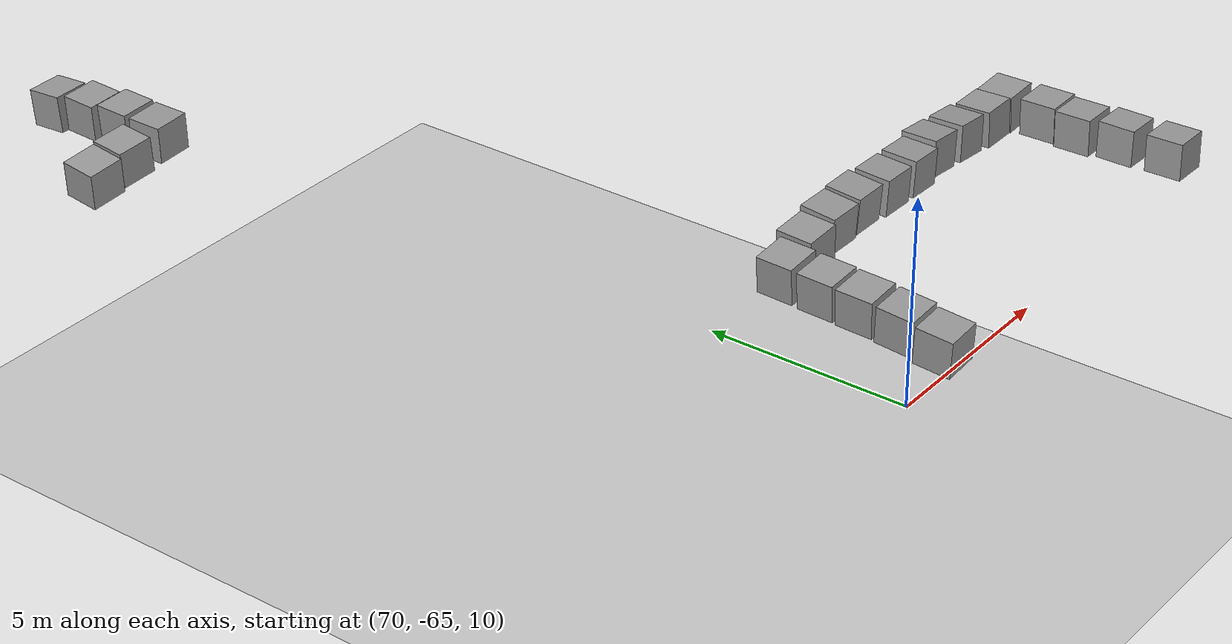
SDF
<sdf version="1.6">
 <world name="default">
  <model name="ground_plane">
   <static>1</static>
   <link name="link">
    <collision name="collision">
     <geometry><plane><normal>0 0 1</normal><size>100 100</size></plane></geometry>
     <surface>
      <contact><collide_bitmask>65535</collide_bitmask></contact>
      <friction><ode><mu>100</mu><mu2>50</mu2></ode></friction>
     </surface>
    </collision>
    <visual name="visual">
     <cast_shadows>0</cast_shadows>
     <geometry><plane><normal>0 0 1</normal><size>100 100</size></plane></geometry>
     <material>
      <script><uri>model://media/materials/scripts/gazebo.material</uri><name>Gazebo/Grey</name></script>
     </material>
    </visual>
   </link>
  </model>
  <model name="unit_box_0_clone_clone_5_clone_2_clone_8">
   <pose>71.1512 -38.5954 8.43974 -0.079454 -0.026746 -0.011143</pose>
   <link name="link">
    <inertial>
     <mass>1</mass>
     <inertia>
      <ixx>0.166667</ixx>
      <ixy>0</ixy>
      <ixz>0</ixz>
      <iyy>0.166667</iyy>
      <iyz>0</iyz>
      <izz>0.166667</izz>
     </inertia>
    </inertial>
    <collision name="collision"><geometry><box><size>1 1 1</size></box></geometry></collision>
    <visual name="visual">
     <geometry><box><size>1 1 1</size></box></geometry>
     <material>
      <script><name>Gazebo/Grey</name><uri>model://media/materials/scripts/gazebo.material</uri></script>
     </material>
    </visual>
   </link>
  </model>
  <model name="unit_box_0_clone_clone_5_clone_2_clone_9">
   <pose>71.3168 -39.6518 8.4976 0.012194 -0.06355 -0.033442</pose>
   <link name="link">
    <inertial>
     <mass>1</mass>
     <inertia>
      <ixx>0.166667</ixx>
      <ixy>0</ixy>
      <ixz>0</ixz>
      <iyy>0.166667</iyy>
      <iyz>0</iyz>
      <izz>0.166667</izz>
     </inertia>
    </inertial>
    <collision name="collision"><geometry><box><size>1 1 1</size></box></geometry></collision>
    <visual name="visual">
     <geometry><box><size>1 1 1</size></box></geometry>
     <material>
      <script><name>Gazebo/Grey</name><uri>model://media/materials/scripts/gazebo.material</uri></script>
     </material>
    </visual>
   </link>
  </model>
  <model name="unit_box_0_clone_clone_5_clone_2_clone_10">
   <pose>71.4637 -40.6971 8.51288 -0.008278 -0.070346 -0.039338</pose>
   <link name="link">
    <inertial>
     <mass>1</mass>
     <inertia>
      <ixx>0.166667</ixx>
      <ixy>0</ixy>
      <ixz>0</ixz>
      <iyy>0.166667</iyy>
      <iyz>0</iyz>
      <izz>0.166667</izz>
     </inertia>
    </inertial>
    <collision name="collision"><geometry><box><size>1 1 1</size></box></geometry></collision>
    <visual name="visual">
     <geometry><box><size>1 1 1</size></box></geometry>
     <material>
      <script><name>Gazebo/Grey</name><uri>model://media/materials/scripts/gazebo.material</uri></script>
     </material>
    </visual>
   </link>
  </model>
  <model name="unit_box_0_clone_clone_5_clone_2_clone_11">
   <pose>71.4317 -41.8346 8.50306 0.005621 -0.045023 0.012802</pose>
   <link name="link">
    <inertial>
     <mass>1</mass>
     <inertia>
      <ixx>0.166667</ixx>
      <ixy>0</ixy>
      <ixz>0</ixz>
      <iyy>0.166667</iyy>
      <iyz>0</iyz>
      <izz>0.166667</izz>
     </inertia>
    </inertial>
    <collision name="collision"><geometry><box><size>1 1 1</size></box></geometry></collision>
    <visual name="visual">
     <geometry><box><size>1 1 1</size></box></geometry>
     <material>
      <script><name>Gazebo/Grey</name><uri>model://media/materials/scripts/gazebo.material</uri></script>
     </material>
    </visual>
   </link>
  </model>
  <model name="unit_box_0_clone_clone_5_clone_2_clone_12">
   <pose>70.1063 -41.907 8.42726 0.030607 -0.097137 -0.077572</pose>
   <link name="link">
    <inertial>
     <mass>1</mass>
     <inertia>
      <ixx>0.166667</ixx>
      <ixy>0</ixy>
      <ixz>0</ixz>
      <iyy>0.166667</iyy>
      <iyz>0</iyz>
      <izz>0.166667</izz>
     </inertia>
    </inertial>
    <collision name="collision"><geometry><box><size>1 1 1</size></box></geometry></collision>
    <visual name="visual">
     <geometry><box><size>1 1 1</size></box></geometry>
     <material>
      <script><name>Gazebo/Grey</name><uri>model://media/materials/scripts/gazebo.material</uri></script>
     </material>
    </visual>
   </link>
  </model>
  <model name="unit_box_0_clone_clone_5_clone_2_clone_13">
   <pose>69.0108 -41.9505 8.32343 0.075912 -0.107909 -0.064497</pose>
   <link name="link">
    <inertial>
     <mass>1</mass>
     <inertia>
      <ixx>0.166667</ixx>
      <ixy>0</ixy>
      <ixz>0</ixz>
      <iyy>0.166667</iyy>
      <iyz>0</iyz>
      <izz>0.166667</izz>
     </inertia>
    </inertial>
    <collision name="collision"><geometry><box><size>1 1 1</size></box></geometry></collision>
    <visual name="visual">
     <geometry><box><size>1 1 1</size></box></geometry>
     <material>
      <script><name>Gazebo/Grey</name><uri>model://media/materials/scripts/gazebo.material</uri></script>
     </material>
    </visual>
   </link>
  </model>
  <model name="unit_box_1">
   <pose>77.413 -58.1814 8.77008 0.073333 -0.022704 -0.030545</pose>
   <link name="link">
    <inertial>
     <mass>1</mass>
     <inertia>
      <ixx>0.166667</ixx>
      <ixy>0</ixy>
      <ixz>0</ixz>
      <iyy>0.166667</iyy>
      <iyz>0</iyz>
      <izz>0.166667</izz>
     </inertia>
    </inertial>
    <collision name="collision"><geometry><box><size>1 1 1</size></box></geometry></collision>
    <visual name="visual">
     <geometry><box><size>1 1 1</size></box></geometry>
     <material>
      <script><name>Gazebo/Grey</name><uri>model://media/materials/scripts/gazebo.material</uri></script>
     </material>
    </visual>
   </link>
  </model>
  <model name="unit_box_1_clone">
   <pose>78.527 -58.1459 8.79033 0.077571 -0.002398 -0.000725</pose>
   <link name="link">
    <inertial>
     <mass>1</mass>
     <inertia>
      <ixx>0.166667</ixx>
      <ixy>0</ixy>
      <ixz>0</ixz>
      <iyy>0.166667</iyy>
      <iyz>0</iyz>
      <izz>0.166667</izz>
     </inertia>
    </inertial>
    <collision name="collision"><geometry><box><size>1 1 1</size></box></geometry></collision>
    <visual name="visual">
     <geometry><box><size>1 1 1</size></box></geometry>
     <material>
      <script><name>Gazebo/Grey</name><uri>model://media/materials/scripts/gazebo.material</uri></script>
     </material>
    </visual>
   </link>
  </model>
  <model name="unit_box_1_clone_0">
   <pose>79.7278 -58.2185 8.76647 0.045127 0.011042 -0.006872</pose>
   <link name="link">
    <inertial>
     <mass>1</mass>
     <inertia>
      <ixx>0.166667</ixx>
      <ixy>0</ixy>
      <ixz>0</ixz>
      <iyy>0.166667</iyy>
      <iyz>0</iyz>
      <izz>0.166667</izz>
     </inertia>
    </inertial>
    <collision name="collision"><geometry><box><size>1 1 1</size></box></geometry></collision>
    <visual name="visual">
     <geometry><box><size>1 1 1</size></box></geometry>
     <material>
      <script><name>Gazebo/Grey</name><uri>model://media/materials/scripts/gazebo.material</uri></script>
     </material>
    </visual>
   </link>
  </model>
  <model name="unit_box_1_clone_1">
   <pose>80.9597 -58.2097 8.73332 0.021912 0.038705 0.001502</pose>
   <link name="link">
    <inertial>
     <mass>1</mass>
     <inertia>
      <ixx>0.166667</ixx>
      <ixy>0</ixy>
      <ixz>0</ixz>
      <iyy>0.166667</iyy>
      <iyz>0</iyz>
      <izz>0.166667</izz>
     </inertia>
    </inertial>
    <collision name="collision"><geometry><box><size>1 1 1</size></box></geometry></collision>
    <visual name="visual">
     <geometry><box><size>1 1 1</size></box></geometry>
     <material>
      <script><name>Gazebo/Grey</name><uri>model://media/materials/scripts/gazebo.material</uri></script>
     </material>
    </visual>
   </link>
  </model>
  <model name="unit_box_1_clone_2">
   <pose>82.162 -58.0399 8.6798 -0.014013 0.085247 -0.006686</pose>
   <link name="link">
    <inertial>
     <mass>1</mass>
     <inertia>
      <ixx>0.166667</ixx>
      <ixy>0</ixy>
      <ixz>0</ixz>
      <iyy>0.166667</iyy>
      <iyz>0</iyz>
      <izz>0.166667</izz>
     </inertia>
    </inertial>
    <collision name="collision"><geometry><box><size>1 1 1</size></box></geometry></collision>
    <visual name="visual">
     <geometry><box><size>1 1 1</size></box></geometry>
     <material>
      <script><name>Gazebo/Grey</name><uri>model://media/materials/scripts/gazebo.material</uri></script>
     </material>
    </visual>
   </link>
  </model>
  <model name="unit_box_1_clone_3">
   <pose>83.4058 -58.0766 8.59062 -0.034044 0.075144 -0.015066</pose>
   <link name="link">
    <inertial>
     <mass>1</mass>
     <inertia>
      <ixx>0.166667</ixx>
      <ixy>0</ixy>
      <ixz>0</ixz>
      <iyy>0.166667</iyy>
      <iyz>0</iyz>
      <izz>0.166667</izz>
     </inertia>
    </inertial>
    <collision name="collision"><geometry><box><size>1 1 1</size></box></geometry></collision>
    <visual name="visual">
     <geometry><box><size>1 1 1</size></box></geometry>
     <material>
      <script><name>Gazebo/Grey</name><uri>model://media/materials/scripts/gazebo.material</uri></script>
     </material>
    </visual>
   </link>
  </model>
  <model name="unit_box_1_clone_4">
   <pose>84.6052 -58.1651 8.54855 -0.040073 -0.019911 -0.012426</pose>
   <link name="link">
    <inertial>
     <mass>1</mass>
     <inertia>
      <ixx>0.166667</ixx>
      <ixy>0</ixy>
      <ixz>0</ixz>
      <iyy>0.166667</iyy>
      <iyz>0</iyz>
      <izz>0.166667</izz>
     </inertia>
    </inertial>
    <collision name="collision"><geometry><box><size>1 1 1</size></box></geometry></collision>
    <visual name="visual">
     <geometry><box><size>1 1 1</size></box></geometry>
     <material>
      <script><name>Gazebo/Grey</name><uri>model://media/materials/scripts/gazebo.material</uri></script>
     </material>
    </visual>
   </link>
  </model>
  <model name="unit_box_1_clone_5">
   <pose>85.6262 -58.1936 8.58315 -0.018628 -0.064333 -0.011599</pose>
   <link name="link">
    <inertial>
     <mass>1</mass>
     <inertia>
      <ixx>0.166667</ixx>
      <ixy>0</ixy>
      <ixz>0</ixz>
      <iyy>0.166667</iyy>
      <iyz>0</iyz>
      <izz>0.166667</izz>
     </inertia>
    </inertial>
    <collision name="collision"><geometry><box><size>1 1 1</size></box></geometry></collision>
    <visual name="visual">
     <geometry><box><size>1 1 1</size></box></geometry>
     <material>
      <script><name>Gazebo/Grey</name><uri>model://media/materials/scripts/gazebo.material</uri></script>
     </material>
    </visual>
   </link>
  </model>
  <model name="unit_box_1_clone_6">
   <pose>76.296 -58.2933 8.69262 0.031313 -0.082922 -0.028014</pose>
   <link name="link">
    <inertial>
     <mass>1</mass>
     <inertia>
      <ixx>0.166667</ixx>
      <ixy>0</ixy>
      <ixz>0</ixz>
      <iyy>0.166667</iyy>
      <iyz>0</iyz>
      <izz>0.166667</izz>
     </inertia>
    </inertial>
    <collision name="collision"><geometry><box><size>1 1 1</size></box></geometry></collision>
    <visual name="visual">
     <geometry><box><size>1 1 1</size></box></geometry>
     <material>
      <script><name>Gazebo/Grey</name><uri>model://media/materials/scripts/gazebo.material</uri></script>
     </material>
    </visual>
   </link>
  </model>
  <model name="unit_box_1_clone_7">
   <pose>75.1558 -58.5157 8.58277 0.012835 -0.106345 -0.021829</pose>
   <link name="link">
    <inertial>
     <mass>1</mass>
     <inertia>
      <ixx>0.166667</ixx>
      <ixy>0</ixy>
      <ixz>0</ixz>
      <iyy>0.166667</iyy>
      <iyz>0</iyz>
      <izz>0.166667</izz>
     </inertia>
    </inertial>
    <collision name="collision"><geometry><box><size>1 1 1</size></box></geometry></collision>
    <visual name="visual">
     <geometry><box><size>1 1 1</size></box></geometry>
     <material>
      <script><name>Gazebo/Grey</name><uri>model://media/materials/scripts/gazebo.material</uri></script>
     </material>
    </visual>
   </link>
  </model>
  <model name="unit_box_1_clone_8">
   <pose>75.1148 -59.6741 8.55782 0.011826 -0.091262 -0.026348</pose>
   <link name="link">
    <inertial>
     <mass>1</mass>
     <inertia>
      <ixx>0.166667</ixx>
      <ixy>0</ixy>
      <ixz>0</ixz>
      <iyy>0.166667</iyy>
      <iyz>0</iyz>
      <izz>0.166667</izz>
     </inertia>
    </inertial>
    <collision name="collision"><geometry><box><size>1 1 1</size></box></geometry></collision>
    <visual name="visual">
     <geometry><box><size>1 1 1</size></box></geometry>
     <material>
      <script><name>Gazebo/Grey</name><uri>model://media/materials/scripts/gazebo.material</uri></script>
     </material>
    </visual>
   </link>
  </model>
  <model name="unit_box_1_clone_9">
   <pose>75.0677 -60.7687 8.5346 0.024033 -0.088806 -0.007339</pose>
   <link name="link">
    <inertial>
     <mass>1</mass>
     <inertia>
      <ixx>0.166667</ixx>
      <ixy>0</ixy>
      <ixz>0</ixz>
      <iyy>0.166667</iyy>
      <iyz>0</iyz>
      <izz>0.166667</izz>
     </inertia>
    </inertial>
    <collision name="collision"><geometry><box><size>1 1 1</size></box></geometry></collision>
    <visual name="visual">
     <geometry><box><size>1 1 1</size></box></geometry>
     <material>
      <script><name>Gazebo/Grey</name><uri>model://media/materials/scripts/gazebo.material</uri></script>
     </material>
    </visual>
   </link>
  </model>
  <model name="unit_box_1_clone_10">
   <pose>75.0264 -61.8805 8.473 0.07007 -0.080026 -0.009774</pose>
   <link name="link">
    <inertial>
     <mass>1</mass>
     <inertia>
      <ixx>0.166667</ixx>
      <ixy>0</ixy>
      <ixz>0</ixz>
      <iyy>0.166667</iyy>
      <iyz>0</iyz>
      <izz>0.166667</izz>
     </inertia>
    </inertial>
    <collision name="collision"><geometry><box><size>1 1 1</size></box></geometry></collision>
    <visual name="visual">
     <geometry><box><size>1 1 1</size></box></geometry>
     <material>
      <script><name>Gazebo/Grey</name><uri>model://media/materials/scripts/gazebo.material</uri></script>
     </material>
    </visual>
   </link>
  </model>
  <model name="unit_box_1_clone_11">
   <pose>74.9152 -62.9877 8.38576 0.074477 -0.066658 0.005547</pose>
   <link name="link">
    <inertial>
     <mass>1</mass>
     <inertia>
      <ixx>0.166667</ixx>
      <ixy>0</ixy>
      <ixz>0</ixz>
      <iyy>0.166667</iyy>
      <iyz>0</iyz>
      <izz>0.166667</izz>
     </inertia>
    </inertial>
    <collision name="collision"><geometry><box><size>1 1 1</size></box></geometry></collision>
    <visual name="visual">
     <geometry><box><size>1 1 1</size></box></geometry>
     <material>
      <script><name>Gazebo/Grey</name><uri>model://media/materials/scripts/gazebo.material</uri></script>
     </material>
    </visual>
   </link>
  </model>
  <model name="unit_box_1_clone_12">
   <pose>85.7251 -59.4022 8.59249 -0.02292 -0.0248 -0.0092</pose>
   <link name="link">
    <inertial>
     <mass>1</mass>
     <inertia>
      <ixx>0.166667</ixx>
      <ixy>0</ixy>
      <ixz>0</ixz>
      <iyy>0.166667</iyy>
      <iyz>0</iyz>
      <izz>0.166667</izz>
     </inertia>
    </inertial>
    <collision name="collision"><geometry><box><size>1 1 1</size></box></geometry></collision>
    <visual name="visual">
     <geometry><box><size>1 1 1</size></box></geometry>
     <material>
      <script><name>Gazebo/Grey</name><uri>model://media/materials/scripts/gazebo.material</uri></script>
     </material>
    </visual>
   </link>
  </model>
  <model name="unit_box_1_clone_13">
   <pose>85.6215 -60.467 8.60813 -0.025082 -0.004574 -0.01232</pose>
   <link name="link">
    <inertial>
     <mass>1</mass>
     <inertia>
      <ixx>0.166667</ixx>
      <ixy>0</ixy>
      <ixz>0</ixz>
      <iyy>0.166667</iyy>
      <iyz>0</iyz>
      <izz>0.166667</izz>
     </inertia>
    </inertial>
    <collision name="collision"><geometry><box><size>1 1 1</size></box></geometry></collision>
    <visual name="visual">
     <geometry><box><size>1 1 1</size></box></geometry>
     <material>
      <script><name>Gazebo/Grey</name><uri>model://media/materials/scripts/gazebo.material</uri></script>
     </material>
    </visual>
   </link>
  </model>
  <model name="unit_box_1_clone_14">
   <pose>85.7477 -61.6299 8.62068 -0.004057 0.017617 -0.01234</pose>
   <link name="link">
    <inertial>
     <mass>1</mass>
     <inertia>
      <ixx>0.166667</ixx>
      <ixy>0</ixy>
      <ixz>0</ixz>
      <iyy>0.166667</iyy>
      <iyz>0</iyz>
      <izz>0.166667</izz>
     </inertia>
    </inertial>
    <collision name="collision"><geometry><box><size>1 1 1</size></box></geometry></collision>
    <visual name="visual">
     <geometry><box><size>1 1 1</size></box></geometry>
     <material>
      <script><name>Gazebo/Grey</name><uri>model://media/materials/scripts/gazebo.material</uri></script>
     </material>
    </visual>
   </link>
  </model>
  <model name="unit_box_1_clone_15">
   <pose>85.8077 -62.9596 8.63763 -0.024814 0.016156 -0.011185</pose>
   <link name="link">
    <inertial>
     <mass>1</mass>
     <inertia>
      <ixx>0.166667</ixx>
      <ixy>0</ixy>
      <ixz>0</ixz>
      <iyy>0.166667</iyy>
      <iyz>0</iyz>
      <izz>0.166667</izz>
     </inertia>
    </inertial>
    <collision name="collision"><geometry><box><size>1 1 1</size></box></geometry></collision>
    <visual name="visual">
     <geometry><box><size>1 1 1</size></box></geometry>
     <material>
      <script><name>Gazebo/Grey</name><uri>model://media/materials/scripts/gazebo.material</uri></script>
     </material>
    </visual>
   </link>
  </model>
 </world>
</sdf>
